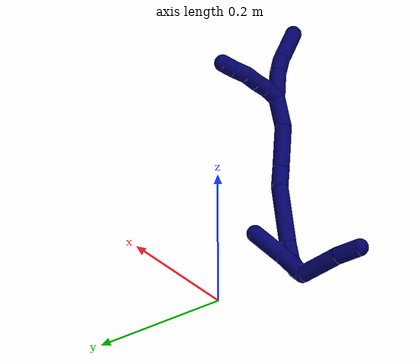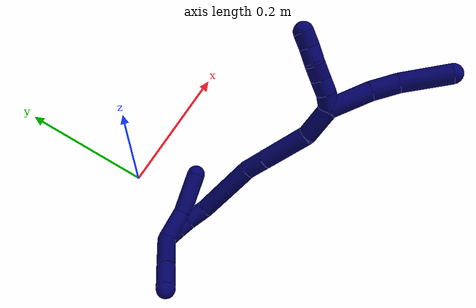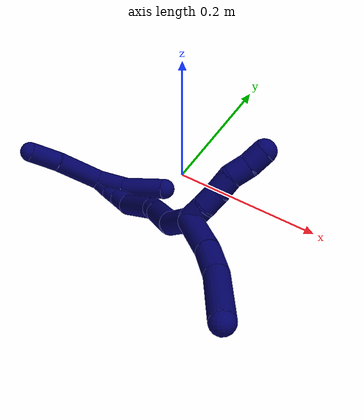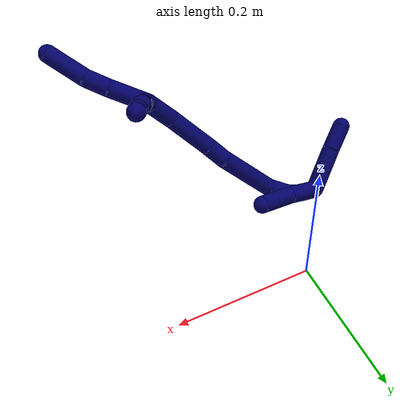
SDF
<sdf version="1.7">
 <world name="default">
  <model name="7">
   <static>0</static>
   <link name="7">
    <collision name="collision-cylinder-e_1_2_8">
     <pose>0.012269 -0.0117 0.021008 0.508134 0.471814 0.124683</pose>
     <geometry><cylinder><radius>0.0125</radius><length>0.053991</length></cylinder></geometry>
     <surface>
      <friction><ode><mu>1.16</mu><mu2>1.16</mu2><slip1>0</slip1><slip2>0</slip2></ode></friction>
      <contact><ode><kp>1e+06</kp><kd>1</kd><max_vel>0</max_vel><min_depth>0.001</min_depth></ode></contact>
     </surface>
    </collision>
    <visual name="visual-cylinder-e_1_2_8">
     <pose>0.012269 -0.0117 0.021008 0.508134 0.471814 0.124683</pose>
     <geometry><cylinder><radius>0.0125</radius><length>0.053991</length></cylinder></geometry>
     <material><ambient>0.003922 0 0.403922 1</ambient></material>
    </visual>
    <collision name="collision-cylinder-e_2_8_9">
     <pose>0.033467 -0.032006 0.053931 0.625553 0.545853 0.18055</pose>
     <geometry><cylinder><radius>0.0125</radius><length>0.034395</length></cylinder></geometry>
     <surface>
      <friction><ode><mu>1.16</mu><mu2>1.16</mu2><slip1>0</slip1><slip2>0</slip2></ode></friction>
      <contact><ode><kp>1e+06</kp><kd>1</kd><max_vel>0</max_vel><min_depth>0.001</min_depth></ode></contact>
     </surface>
    </collision>
    <visual name="visual-cylinder-e_2_8_9">
     <pose>0.033467 -0.032006 0.053931 0.625553 0.545853 0.18055</pose>
     <geometry><cylinder><radius>0.0125</radius><length>0.034395</length></cylinder></geometry>
     <material><ambient>0.003922 0 0.403922 1</ambient></material>
    </visual>
    <collision name="collision-cylinder-e_3_9_6">
     <pose>0.057064 -0.060306 0.084449 0.813874 0.496274 0.21753</pose>
     <geometry><cylinder><radius>0.0125</radius><length>0.061614</length></cylinder></geometry>
     <surface>
      <friction><ode><mu>1.16</mu><mu2>1.16</mu2><slip1>0</slip1><slip2>0</slip2></ode></friction>
      <contact><ode><kp>1e+06</kp><kd>1</kd><max_vel>0</max_vel><min_depth>0.001</min_depth></ode></contact>
     </surface>
    </collision>
    <visual name="visual-cylinder-e_3_9_6">
     <pose>0.057064 -0.060306 0.084449 0.813874 0.496274 0.21753</pose>
     <geometry><cylinder><radius>0.0125</radius><length>0.061614</length></cylinder></geometry>
     <material><ambient>0.003922 0 0.403922 1</ambient></material>
    </visual>
    <collision name="collision-cylinder-e_1_2_10">
     <pose>-0.006273 0.00218 0.007477 -0.283752 -0.678023 0.10065</pose>
     <geometry><cylinder><radius>0.0125</radius><length>0.02</length></cylinder></geometry>
     <surface>
      <friction><ode><mu>1.16</mu><mu2>1.16</mu2><slip1>0</slip1><slip2>0</slip2></ode></friction>
      <contact><ode><kp>1e+06</kp><kd>1</kd><max_vel>0</max_vel><min_depth>0.001</min_depth></ode></contact>
     </surface>
    </collision>
    <visual name="visual-cylinder-e_1_2_10">
     <pose>-0.006273 0.00218 0.007477 -0.283752 -0.678023 0.10065</pose>
     <geometry><cylinder><radius>0.0125</radius><length>0.02</length></cylinder></geometry>
     <material><ambient>0.003922 0 0.403922 1</ambient></material>
    </visual>
    <collision name="collision-cylinder-e_2_10_11">
     <pose>-0.019507 0.008095 0.021084 -0.547084 -0.770088 0.226446</pose>
     <geometry><cylinder><radius>0.0125</radius><length>0.02</length></cylinder></geometry>
     <surface>
      <friction><ode><mu>1.16</mu><mu2>1.16</mu2><slip1>0</slip1><slip2>0</slip2></ode></friction>
      <contact><ode><kp>1e+06</kp><kd>1</kd><max_vel>0</max_vel><min_depth>0.001</min_depth></ode></contact>
     </surface>
    </collision>
    <visual name="visual-cylinder-e_2_10_11">
     <pose>-0.019507 0.008095 0.021084 -0.547084 -0.770088 0.226446</pose>
     <geometry><cylinder><radius>0.0125</radius><length>0.02</length></cylinder></geometry>
     <material><ambient>0.003922 0 0.403922 1</ambient></material>
    </visual>
    <collision name="collision-cylinder-e_3_11_12">
     <pose>-0.033902 0.014776 0.03322 -0.45611 -0.838039 0.206015</pose>
     <geometry><cylinder><radius>0.0125</radius><length>0.02</length></cylinder></geometry>
     <surface>
      <friction><ode><mu>1.16</mu><mu2>1.16</mu2><slip1>0</slip1><slip2>0</slip2></ode></friction>
      <contact><ode><kp>1e+06</kp><kd>1</kd><max_vel>0</max_vel><min_depth>0.001</min_depth></ode></contact>
     </surface>
    </collision>
    <visual name="visual-cylinder-e_3_11_12">
     <pose>-0.033902 0.014776 0.03322 -0.45611 -0.838039 0.206015</pose>
     <geometry><cylinder><radius>0.0125</radius><length>0.02</length></cylinder></geometry>
     <material><ambient>0.003922 0 0.403922 1</ambient></material>
    </visual>
    <collision name="collision-cylinder-e_4_12_13">
     <pose>-0.046356 0.02291 0.046145 -0.643397 -0.525982 0.178974</pose>
     <geometry><cylinder><radius>0.0125</radius><length>0.02</length></cylinder></geometry>
     <surface>
      <friction><ode><mu>1.16</mu><mu2>1.16</mu2><slip1>0</slip1><slip2>0</slip2></ode></friction>
      <contact><ode><kp>1e+06</kp><kd>1</kd><max_vel>0</max_vel><min_depth>0.001</min_depth></ode></contact>
     </surface>
    </collision>
    <visual name="visual-cylinder-e_4_12_13">
     <pose>-0.046356 0.02291 0.046145 -0.643397 -0.525982 0.178974</pose>
     <geometry><cylinder><radius>0.0125</radius><length>0.02</length></cylinder></geometry>
     <material><ambient>0.003922 0 0.403922 1</ambient></material>
    </visual>
    <collision name="collision-cylinder-e_5_13_5">
     <pose>-0.057825 0.032453 0.059346 -0.606181 -0.700705 0.22757</pose>
     <geometry><cylinder><radius>0.0125</radius><length>0.02</length></cylinder></geometry>
     <surface>
      <friction><ode><mu>1.16</mu><mu2>1.16</mu2><slip1>0</slip1><slip2>0</slip2></ode></friction>
      <contact><ode><kp>1e+06</kp><kd>1</kd><max_vel>0</max_vel><min_depth>0.001</min_depth></ode></contact>
     </surface>
    </collision>
    <visual name="visual-cylinder-e_5_13_5">
     <pose>-0.057825 0.032453 0.059346 -0.606181 -0.700705 0.22757</pose>
     <geometry><cylinder><radius>0.0125</radius><length>0.02</length></cylinder></geometry>
     <material><ambient>0.003922 0 0.403922 1</ambient></material>
    </visual>
    <collision name="collision-cylinder-e_1_2_14">
     <pose>0.003535 0.00838 -0.020461 -2.75288 0.15855 -0.767186</pose>
     <geometry><cylinder><radius>0.0125</radius><length>0.044782</length></cylinder></geometry>
     <surface>
      <friction><ode><mu>1.16</mu><mu2>1.16</mu2><slip1>0</slip1><slip2>0</slip2></ode></friction>
      <contact><ode><kp>1e+06</kp><kd>1</kd><max_vel>0</max_vel><min_depth>0.001</min_depth></ode></contact>
     </surface>
    </collision>
    <visual name="visual-cylinder-e_1_2_14">
     <pose>0.003535 0.00838 -0.020461 -2.75288 0.15855 -0.767186</pose>
     <geometry><cylinder><radius>0.0125</radius><length>0.044782</length></cylinder></geometry>
     <material><ambient>0.003922 0 0.403922 1</ambient></material>
    </visual>
    <collision name="collision-cylinder-e_2_14_15">
     <pose>0.003773 0.035636 -0.068041 -2.53351 -0.099482 0.314692</pose>
     <geometry><cylinder><radius>0.0125</radius><length>0.066413</length></cylinder></geometry>
     <surface>
      <friction><ode><mu>1.16</mu><mu2>1.16</mu2><slip1>0</slip1><slip2>0</slip2></ode></friction>
      <contact><ode><kp>1e+06</kp><kd>1</kd><max_vel>0</max_vel><min_depth>0.001</min_depth></ode></contact>
     </surface>
    </collision>
    <visual name="visual-cylinder-e_2_14_15">
     <pose>0.003773 0.035636 -0.068041 -2.53351 -0.099482 0.314692</pose>
     <geometry><cylinder><radius>0.0125</radius><length>0.066413</length></cylinder></geometry>
     <material><ambient>0.003922 0 0.403922 1</ambient></material>
    </visual>
    <collision name="collision-cylinder-e_3_15_16">
     <pose>-0.00055 0.063116 -0.107013 -2.51377 -0.06986 0.214451</pose>
     <geometry><cylinder><radius>0.0125</radius><length>0.029362</length></cylinder></geometry>
     <surface>
      <friction><ode><mu>1.16</mu><mu2>1.16</mu2><slip1>0</slip1><slip2>0</slip2></ode></friction>
      <contact><ode><kp>1e+06</kp><kd>1</kd><max_vel>0</max_vel><min_depth>0.001</min_depth></ode></contact>
     </surface>
    </collision>
    <visual name="visual-cylinder-e_3_15_16">
     <pose>-0.00055 0.063116 -0.107013 -2.51377 -0.06986 0.214451</pose>
     <geometry><cylinder><radius>0.0125</radius><length>0.029362</length></cylinder></geometry>
     <material><ambient>0.003922 0 0.403922 1</ambient></material>
    </visual>
    <collision name="collision-cylinder-e_4_16_17">
     <pose>-0.000953 0.090642 -0.158667 -2.69777 0.014113 -0.062529</pose>
     <geometry><cylinder><radius>0.0125</radius><length>0.088153</length></cylinder></geometry>
     <surface>
      <friction><ode><mu>1.16</mu><mu2>1.16</mu2><slip1>0</slip1><slip2>0</slip2></ode></friction>
      <contact><ode><kp>1e+06</kp><kd>1</kd><max_vel>0</max_vel><min_depth>0.001</min_depth></ode></contact>
     </surface>
    </collision>
    <visual name="visual-cylinder-e_4_16_17">
     <pose>-0.000953 0.090642 -0.158667 -2.69777 0.014113 -0.062529</pose>
     <geometry><cylinder><radius>0.0125</radius><length>0.088153</length></cylinder></geometry>
     <material><ambient>0.003922 0 0.403922 1</ambient></material>
    </visual>
    <collision name="collision-cylinder-e_5_17_18">
     <pose>-0.004588 0.114315 -0.211736 -2.79786 -0.293376 1.41037</pose>
     <geometry><cylinder><radius>0.0125</radius><length>0.029438</length></cylinder></geometry>
     <surface>
      <friction><ode><mu>1.16</mu><mu2>1.16</mu2><slip1>0</slip1><slip2>0</slip2></ode></friction>
      <contact><ode><kp>1e+06</kp><kd>1</kd><max_vel>0</max_vel><min_depth>0.001</min_depth></ode></contact>
     </surface>
    </collision>
    <visual name="visual-cylinder-e_5_17_18">
     <pose>-0.004588 0.114315 -0.211736 -2.79786 -0.293376 1.41037</pose>
     <geometry><cylinder><radius>0.0125</radius><length>0.029438</length></cylinder></geometry>
     <material><ambient>0.003922 0 0.403922 1</ambient></material>
    </visual>
    <collision name="collision-cylinder-e_6_18_19">
     <pose>-0.013419 0.119844 -0.234203 -3.05701 -0.459973 2.78395</pose>
     <geometry><cylinder><radius>0.0125</radius><length>0.02061</length></cylinder></geometry>
     <surface>
      <friction><ode><mu>1.16</mu><mu2>1.16</mu2><slip1>0</slip1><slip2>0</slip2></ode></friction>
      <contact><ode><kp>1e+06</kp><kd>1</kd><max_vel>0</max_vel><min_depth>0.001</min_depth></ode></contact>
     </surface>
    </collision>
    <visual name="visual-cylinder-e_6_18_19">
     <pose>-0.013419 0.119844 -0.234203 -3.05701 -0.459973 2.78395</pose>
     <geometry><cylinder><radius>0.0125</radius><length>0.02061</length></cylinder></geometry>
     <material><ambient>0.003922 0 0.403922 1</ambient></material>
    </visual>
    <collision name="collision-cylinder-e_7_19_1">
     <pose>-0.024487 0.118905 -0.25163 2.93558 -0.657821 -2.55341</pose>
     <geometry><cylinder><radius>0.0125</radius><length>0.021241</length></cylinder></geometry>
     <surface>
      <friction><ode><mu>1.16</mu><mu2>1.16</mu2><slip1>0</slip1><slip2>0</slip2></ode></friction>
      <contact><ode><kp>1e+06</kp><kd>1</kd><max_vel>0</max_vel><min_depth>0.001</min_depth></ode></contact>
     </surface>
    </collision>
    <visual name="visual-cylinder-e_7_19_1">
     <pose>-0.024487 0.118905 -0.25163 2.93558 -0.657821 -2.55341</pose>
     <geometry><cylinder><radius>0.0125</radius><length>0.021241</length></cylinder></geometry>
     <material><ambient>0.003922 0 0.403922 1</ambient></material>
    </visual>
    <collision name="collision-cylinder-e_1_1_20">
     <pose>-0.025988 0.121121 -0.238826 -0.184957 0.229211 -0.02135</pose>
     <geometry><cylinder><radius>0.0125</radius><length>0.043941</length></cylinder></geometry>
     <surface>
      <friction><ode><mu>1.16</mu><mu2>1.16</mu2><slip1>0</slip1><slip2>0</slip2></ode></friction>
      <contact><ode><kp>1e+06</kp><kd>1</kd><max_vel>0</max_vel><min_depth>0.001</min_depth></ode></contact>
     </surface>
    </collision>
    <visual name="visual-cylinder-e_1_1_20">
     <pose>-0.025988 0.121121 -0.238826 -0.184957 0.229211 -0.02135</pose>
     <geometry><cylinder><radius>0.0125</radius><length>0.043941</length></cylinder></geometry>
     <material><ambient>0.003922 0 0.403922 1</ambient></material>
    </visual>
    <collision name="collision-cylinder-e_2_20_4">
     <pose>-0.019927 0.132231 -0.190721 -0.259097 0.038175 -0.004974</pose>
     <geometry><cylinder><radius>0.0125</radius><length>0.056059</length></cylinder></geometry>
     <surface>
      <friction><ode><mu>1.16</mu><mu2>1.16</mu2><slip1>0</slip1><slip2>0</slip2></ode></friction>
      <contact><ode><kp>1e+06</kp><kd>1</kd><max_vel>0</max_vel><min_depth>0.001</min_depth></ode></contact>
     </surface>
    </collision>
    <visual name="visual-cylinder-e_2_20_4">
     <pose>-0.019927 0.132231 -0.190721 -0.259097 0.038175 -0.004974</pose>
     <geometry><cylinder><radius>0.0125</radius><length>0.056059</length></cylinder></geometry>
     <material><ambient>0.003922 0 0.403922 1</ambient></material>
    </visual>
    <collision name="collision-cylinder-e_1_1_21">
     <pose>-0.04431 0.090218 -0.268287 1.87377 -0.440824 -0.591674</pose>
     <geometry><cylinder><radius>0.0125</radius><length>0.062483</length></cylinder></geometry>
     <surface>
      <friction><ode><mu>1.16</mu><mu2>1.16</mu2><slip1>0</slip1><slip2>0</slip2></ode></friction>
      <contact><ode><kp>1e+06</kp><kd>1</kd><max_vel>0</max_vel><min_depth>0.001</min_depth></ode></contact>
     </surface>
    </collision>
    <visual name="visual-cylinder-e_1_1_21">
     <pose>-0.04431 0.090218 -0.268287 1.87377 -0.440824 -0.591674</pose>
     <geometry><cylinder><radius>0.0125</radius><length>0.062483</length></cylinder></geometry>
     <material><ambient>0.003922 0 0.403922 1</ambient></material>
    </visual>
    <collision name="collision-cylinder-e_2_21_3">
     <pose>-0.064316 0.047158 -0.283672 1.97877 -0.36383 -0.545836</pose>
     <geometry><cylinder><radius>0.0125</radius><length>0.037517</length></cylinder></geometry>
     <surface>
      <friction><ode><mu>1.16</mu><mu2>1.16</mu2><slip1>0</slip1><slip2>0</slip2></ode></friction>
      <contact><ode><kp>1e+06</kp><kd>1</kd><max_vel>0</max_vel><min_depth>0.001</min_depth></ode></contact>
     </surface>
    </collision>
    <visual name="visual-cylinder-e_2_21_3">
     <pose>-0.064316 0.047158 -0.283672 1.97877 -0.36383 -0.545836</pose>
     <geometry><cylinder><radius>0.0125</radius><length>0.037517</length></cylinder></geometry>
     <material><ambient>0.003922 0 0.403922 1</ambient></material>
    </visual>
    <collision name="collision-sphere-3">
     <pose>-0.070991 0.031066 -0.290627 0 -0 0</pose>
     <geometry><sphere><radius>0.0125</radius></sphere></geometry>
     <surface>
      <friction><ode><mu>1.16</mu><mu2>1.16</mu2><slip1>0</slip1><slip2>0</slip2></ode></friction>
      <contact><ode><kp>1e+06</kp><kd>1</kd><max_vel>0</max_vel><min_depth>0.001</min_depth></ode></contact>
     </surface>
    </collision>
    <visual name="visual-sphere-3">
     <pose>-0.070991 0.031066 -0.290627 0 -0 0</pose>
     <geometry><sphere><radius>0.0125</radius></sphere></geometry>
     <material><ambient>0.003922 0 0.403922 1</ambient></material>
    </visual>
    <collision name="collision-sphere-21">
     <pose>-0.057641 0.06325 -0.276717 0 -0 0</pose>
     <geometry><sphere><radius>0.0125</radius></sphere></geometry>
     <surface>
      <friction><ode><mu>1.16</mu><mu2>1.16</mu2><slip1>0</slip1><slip2>0</slip2></ode></friction>
      <contact><ode><kp>1e+06</kp><kd>1</kd><max_vel>0</max_vel><min_depth>0.001</min_depth></ode></contact>
     </surface>
    </collision>
    <visual name="visual-sphere-21">
     <pose>-0.057641 0.06325 -0.276717 0 -0 0</pose>
     <geometry><sphere><radius>0.0125</radius></sphere></geometry>
     <material><ambient>0.003922 0 0.403922 1</ambient></material>
    </visual>
    <collision name="collision-sphere-4">
     <pose>-0.018857 0.139408 -0.163647 0 -0 0</pose>
     <geometry><sphere><radius>0.0125</radius></sphere></geometry>
     <surface>
      <friction><ode><mu>1.16</mu><mu2>1.16</mu2><slip1>0</slip1><slip2>0</slip2></ode></friction>
      <contact><ode><kp>1e+06</kp><kd>1</kd><max_vel>0</max_vel><min_depth>0.001</min_depth></ode></contact>
     </surface>
    </collision>
    <visual name="visual-sphere-4">
     <pose>-0.018857 0.139408 -0.163647 0 -0 0</pose>
     <geometry><sphere><radius>0.0125</radius></sphere></geometry>
     <material><ambient>0.003922 0 0.403922 1</ambient></material>
    </visual>
    <collision name="collision-sphere-20">
     <pose>-0.020997 0.125055 -0.217796 0 -0 0</pose>
     <geometry><sphere><radius>0.0125</radius></sphere></geometry>
     <surface>
      <friction><ode><mu>1.16</mu><mu2>1.16</mu2><slip1>0</slip1><slip2>0</slip2></ode></friction>
      <contact><ode><kp>1e+06</kp><kd>1</kd><max_vel>0</max_vel><min_depth>0.001</min_depth></ode></contact>
     </surface>
    </collision>
    <visual name="visual-sphere-20">
     <pose>-0.020997 0.125055 -0.217796 0 -0 0</pose>
     <geometry><sphere><radius>0.0125</radius></sphere></geometry>
     <material><ambient>0.003922 0 0.403922 1</ambient></material>
    </visual>
    <collision name="collision-sphere-11">
     <pose>-0.026469 0.011829 0.027215 0 -0 0</pose>
     <geometry><sphere><radius>0.0125</radius></sphere></geometry>
     <surface>
      <friction><ode><mu>1.16</mu><mu2>1.16</mu2><slip1>0</slip1><slip2>0</slip2></ode></friction>
      <contact><ode><kp>1e+06</kp><kd>1</kd><max_vel>0</max_vel><min_depth>0.001</min_depth></ode></contact>
     </surface>
    </collision>
    <visual name="visual-sphere-11">
     <pose>-0.026469 0.011829 0.027215 0 -0 0</pose>
     <geometry><sphere><radius>0.0125</radius></sphere></geometry>
     <material><ambient>0.003922 0 0.403922 1</ambient></material>
    </visual>
    <collision name="collision-sphere-10">
     <pose>-0.012545 0.004361 0.014953 0 -0 0</pose>
     <geometry><sphere><radius>0.0125</radius></sphere></geometry>
     <surface>
      <friction><ode><mu>1.16</mu><mu2>1.16</mu2><slip1>0</slip1><slip2>0</slip2></ode></friction>
      <contact><ode><kp>1e+06</kp><kd>1</kd><max_vel>0</max_vel><min_depth>0.001</min_depth></ode></contact>
     </surface>
    </collision>
    <visual name="visual-sphere-10">
     <pose>-0.012545 0.004361 0.014953 0 -0 0</pose>
     <geometry><sphere><radius>0.0125</radius></sphere></geometry>
     <material><ambient>0.003922 0 0.403922 1</ambient></material>
    </visual>
    <collision name="collision-sphere-6">
     <pose>0.071733 -0.08 0.103052 0 -0 0</pose>
     <geometry><sphere><radius>0.0125</radius></sphere></geometry>
     <surface>
      <friction><ode><mu>1.16</mu><mu2>1.16</mu2><slip1>0</slip1><slip2>0</slip2></ode></friction>
      <contact><ode><kp>1e+06</kp><kd>1</kd><max_vel>0</max_vel><min_depth>0.001</min_depth></ode></contact>
     </surface>
    </collision>
    <visual name="visual-sphere-6">
     <pose>0.071733 -0.08 0.103052 0 -0 0</pose>
     <geometry><sphere><radius>0.0125</radius></sphere></geometry>
     <material><ambient>0.003922 0 0.403922 1</ambient></material>
    </visual>
    <collision name="collision-sphere-9">
     <pose>0.042395 -0.040612 0.065846 0 -0 0</pose>
     <geometry><sphere><radius>0.0125</radius></sphere></geometry>
     <surface>
      <friction><ode><mu>1.16</mu><mu2>1.16</mu2><slip1>0</slip1><slip2>0</slip2></ode></friction>
      <contact><ode><kp>1e+06</kp><kd>1</kd><max_vel>0</max_vel><min_depth>0.001</min_depth></ode></contact>
     </surface>
    </collision>
    <visual name="visual-sphere-9">
     <pose>0.042395 -0.040612 0.065846 0 -0 0</pose>
     <geometry><sphere><radius>0.0125</radius></sphere></geometry>
     <material><ambient>0.003922 0 0.403922 1</ambient></material>
    </visual>
    <collision name="collision-sphere-2">
     <geometry><sphere><radius>0.0125</radius></sphere></geometry>
     <surface>
      <friction><ode><mu>1.16</mu><mu2>1.16</mu2><slip1>0</slip1><slip2>0</slip2></ode></friction>
      <contact><ode><kp>1e+06</kp><kd>1</kd><max_vel>0</max_vel><min_depth>0.001</min_depth></ode></contact>
     </surface>
    </collision>
    <visual name="visual-sphere-2">
     <geometry><sphere><radius>0.0125</radius></sphere></geometry>
     <material><ambient>0.003922 0 0.403922 1</ambient></material>
    </visual>
    <collision name="collision-sphere-19">
     <pose>-0.017993 0.120624 -0.243404 0 -0 0</pose>
     <geometry><sphere><radius>0.0125</radius></sphere></geometry>
     <surface>
      <friction><ode><mu>1.16</mu><mu2>1.16</mu2><slip1>0</slip1><slip2>0</slip2></ode></friction>
      <contact><ode><kp>1e+06</kp><kd>1</kd><max_vel>0</max_vel><min_depth>0.001</min_depth></ode></contact>
     </surface>
    </collision>
    <visual name="visual-sphere-19">
     <pose>-0.017993 0.120624 -0.243404 0 -0 0</pose>
     <geometry><sphere><radius>0.0125</radius></sphere></geometry>
     <material><ambient>0.003922 0 0.403922 1</ambient></material>
    </visual>
    <collision name="collision-sphere-8">
     <pose>0.024539 -0.023399 0.042016 0 -0 0</pose>
     <geometry><sphere><radius>0.0125</radius></sphere></geometry>
     <surface>
      <friction><ode><mu>1.16</mu><mu2>1.16</mu2><slip1>0</slip1><slip2>0</slip2></ode></friction>
      <contact><ode><kp>1e+06</kp><kd>1</kd><max_vel>0</max_vel><min_depth>0.001</min_depth></ode></contact>
     </surface>
    </collision>
    <visual name="visual-sphere-8">
     <pose>0.024539 -0.023399 0.042016 0 -0 0</pose>
     <geometry><sphere><radius>0.0125</radius></sphere></geometry>
     <material><ambient>0.003922 0 0.403922 1</ambient></material>
    </visual>
    <collision name="collision-sphere-12">
     <pose>-0.041336 0.017722 0.039226 0 -0 0</pose>
     <geometry><sphere><radius>0.0125</radius></sphere></geometry>
     <surface>
      <friction><ode><mu>1.16</mu><mu2>1.16</mu2><slip1>0</slip1><slip2>0</slip2></ode></friction>
      <contact><ode><kp>1e+06</kp><kd>1</kd><max_vel>0</max_vel><min_depth>0.001</min_depth></ode></contact>
     </surface>
    </collision>
    <visual name="visual-sphere-12">
     <pose>-0.041336 0.017722 0.039226 0 -0 0</pose>
     <geometry><sphere><radius>0.0125</radius></sphere></geometry>
     <material><ambient>0.003922 0 0.403922 1</ambient></material>
    </visual>
    <collision name="collision-sphere-13">
     <pose>-0.051377 0.028098 0.053064 0 -0 0</pose>
     <geometry><sphere><radius>0.0125</radius></sphere></geometry>
     <surface>
      <friction><ode><mu>1.16</mu><mu2>1.16</mu2><slip1>0</slip1><slip2>0</slip2></ode></friction>
      <contact><ode><kp>1e+06</kp><kd>1</kd><max_vel>0</max_vel><min_depth>0.001</min_depth></ode></contact>
     </surface>
    </collision>
    <visual name="visual-sphere-13">
     <pose>-0.051377 0.028098 0.053064 0 -0 0</pose>
     <geometry><sphere><radius>0.0125</radius></sphere></geometry>
     <material><ambient>0.003922 0 0.403922 1</ambient></material>
    </visual>
    <collision name="collision-sphere-5">
     <pose>-0.064272 0.036808 0.065628 0 -0 0</pose>
     <geometry><sphere><radius>0.0125</radius></sphere></geometry>
     <surface>
      <friction><ode><mu>1.16</mu><mu2>1.16</mu2><slip1>0</slip1><slip2>0</slip2></ode></friction>
      <contact><ode><kp>1e+06</kp><kd>1</kd><max_vel>0</max_vel><min_depth>0.001</min_depth></ode></contact>
     </surface>
    </collision>
    <visual name="visual-sphere-5">
     <pose>-0.064272 0.036808 0.065628 0 -0 0</pose>
     <geometry><sphere><radius>0.0125</radius></sphere></geometry>
     <material><ambient>0.003922 0 0.403922 1</ambient></material>
    </visual>
    <collision name="collision-sphere-14">
     <pose>0.007071 0.016759 -0.040922 0 -0 0</pose>
     <geometry><sphere><radius>0.0125</radius></sphere></geometry>
     <surface>
      <friction><ode><mu>1.16</mu><mu2>1.16</mu2><slip1>0</slip1><slip2>0</slip2></ode></friction>
      <contact><ode><kp>1e+06</kp><kd>1</kd><max_vel>0</max_vel><min_depth>0.001</min_depth></ode></contact>
     </surface>
    </collision>
    <visual name="visual-sphere-14">
     <pose>0.007071 0.016759 -0.040922 0 -0 0</pose>
     <geometry><sphere><radius>0.0125</radius></sphere></geometry>
     <material><ambient>0.003922 0 0.403922 1</ambient></material>
    </visual>
    <collision name="collision-sphere-15">
     <pose>0.000475 0.054513 -0.09516 0 -0 0</pose>
     <geometry><sphere><radius>0.0125</radius></sphere></geometry>
     <surface>
      <friction><ode><mu>1.16</mu><mu2>1.16</mu2><slip1>0</slip1><slip2>0</slip2></ode></friction>
      <contact><ode><kp>1e+06</kp><kd>1</kd><max_vel>0</max_vel><min_depth>0.001</min_depth></ode></contact>
     </surface>
    </collision>
    <visual name="visual-sphere-15">
     <pose>0.000475 0.054513 -0.09516 0 -0 0</pose>
     <geometry><sphere><radius>0.0125</radius></sphere></geometry>
     <material><ambient>0.003922 0 0.403922 1</ambient></material>
    </visual>
    <collision name="collision-sphere-16">
     <pose>-0.001575 0.071718 -0.118865 0 -0 0</pose>
     <geometry><sphere><radius>0.0125</radius></sphere></geometry>
     <surface>
      <friction><ode><mu>1.16</mu><mu2>1.16</mu2><slip1>0</slip1><slip2>0</slip2></ode></friction>
      <contact><ode><kp>1e+06</kp><kd>1</kd><max_vel>0</max_vel><min_depth>0.001</min_depth></ode></contact>
     </surface>
    </collision>
    <visual name="visual-sphere-16">
     <pose>-0.001575 0.071718 -0.118865 0 -0 0</pose>
     <geometry><sphere><radius>0.0125</radius></sphere></geometry>
     <material><ambient>0.003922 0 0.403922 1</ambient></material>
    </visual>
    <collision name="collision-sphere-17">
     <pose>-0.000331 0.109567 -0.19847 0 -0 0</pose>
     <geometry><sphere><radius>0.0125</radius></sphere></geometry>
     <surface>
      <friction><ode><mu>1.16</mu><mu2>1.16</mu2><slip1>0</slip1><slip2>0</slip2></ode></friction>
      <contact><ode><kp>1e+06</kp><kd>1</kd><max_vel>0</max_vel><min_depth>0.001</min_depth></ode></contact>
     </surface>
    </collision>
    <visual name="visual-sphere-17">
     <pose>-0.000331 0.109567 -0.19847 0 -0 0</pose>
     <geometry><sphere><radius>0.0125</radius></sphere></geometry>
     <material><ambient>0.003922 0 0.403922 1</ambient></material>
    </visual>
    <collision name="collision-sphere-18">
     <pose>-0.008844 0.119064 -0.225002 0 -0 0</pose>
     <geometry><sphere><radius>0.0125</radius></sphere></geometry>
     <surface>
      <friction><ode><mu>1.16</mu><mu2>1.16</mu2><slip1>0</slip1><slip2>0</slip2></ode></friction>
      <contact><ode><kp>1e+06</kp><kd>1</kd><max_vel>0</max_vel><min_depth>0.001</min_depth></ode></contact>
     </surface>
    </collision>
    <visual name="visual-sphere-18">
     <pose>-0.008844 0.119064 -0.225002 0 -0 0</pose>
     <geometry><sphere><radius>0.0125</radius></sphere></geometry>
     <material><ambient>0.003922 0 0.403922 1</ambient></material>
    </visual>
    <collision name="collision-sphere-1">
     <pose>-0.03098 0.117186 -0.259857 0 -0 0</pose>
     <geometry><sphere><radius>0.0125</radius></sphere></geometry>
     <surface>
      <friction><ode><mu>1.16</mu><mu2>1.16</mu2><slip1>0</slip1><slip2>0</slip2></ode></friction>
      <contact><ode><kp>1e+06</kp><kd>1</kd><max_vel>0</max_vel><min_depth>0.001</min_depth></ode></contact>
     </surface>
    </collision>
    <visual name="visual-sphere-1">
     <pose>-0.03098 0.117186 -0.259857 0 -0 0</pose>
     <geometry><sphere><radius>0.0125</radius></sphere></geometry>
     <material><ambient>0.003922 0 0.403922 1</ambient></material>
    </visual>
    <inertial>
     <pose>-0.008015 0.049664 -0.101364 0 -0 0</pose>
     <mass>0.75</mass>
     <inertia>
      <ixx>0.000173</ixx>
      <ixy>0</ixy>
      <ixz>0</ixz>
      <iyy>-2.1e-05</iyy>
      <iyz>0</iyz>
      <izz>-1.3e-05</izz>
     </inertia>
    </inertial>
   </link>
   <pose>0.137627 -0.211211 0.205275 -0.802086 0.790188 -0.969378</pose>
  </model>
 </world>
</sdf>
